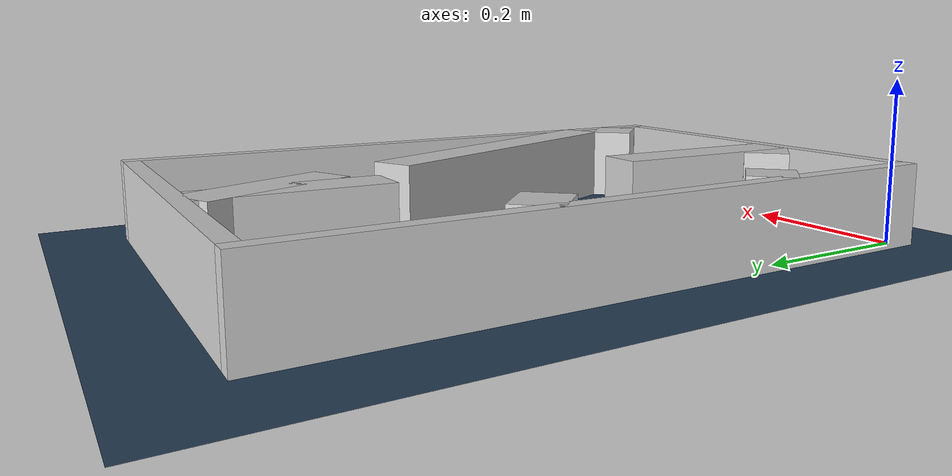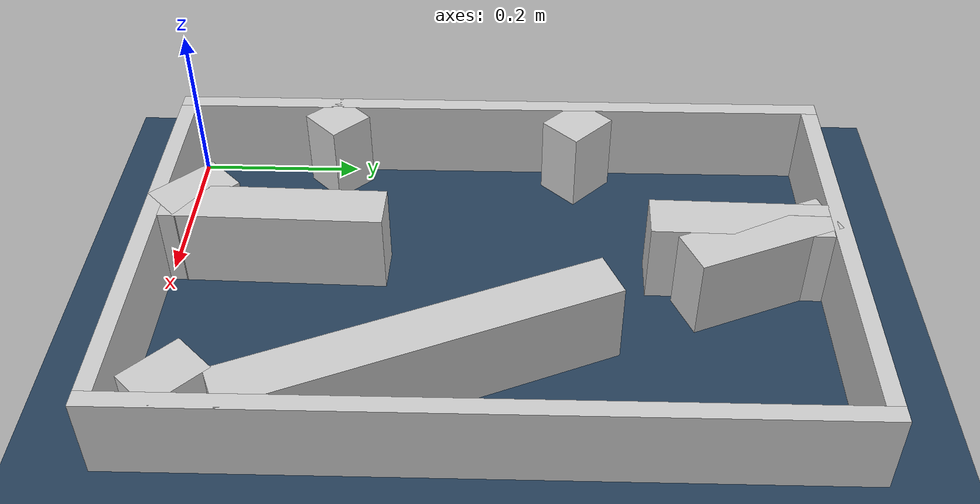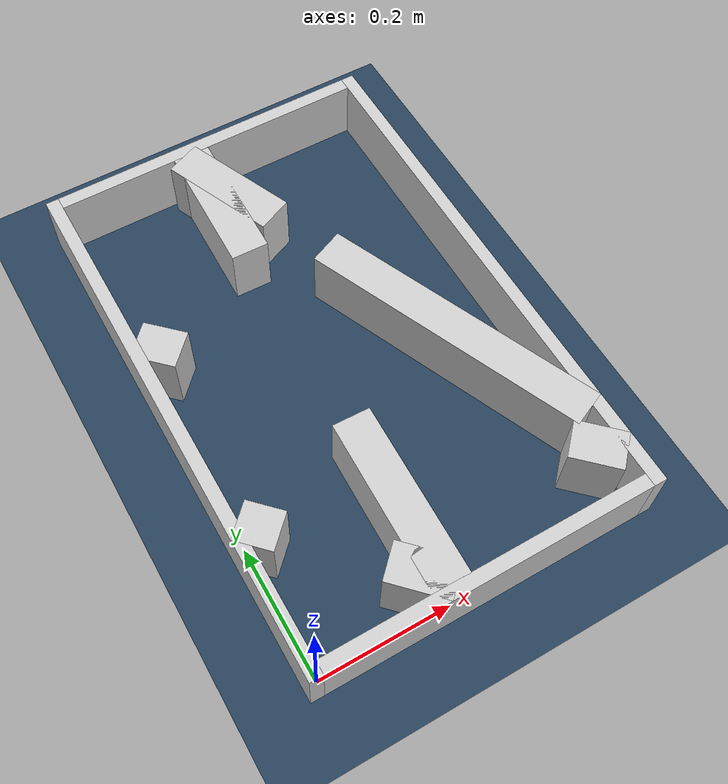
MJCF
<?xml version="1.0" ?>
<mujoco model="generated_real_template">
  <compiler angle="degree"/>
  <option timestep="0.002" integrator="implicitfast" iterations="100" cone="elliptic"/>
  <default>
    <geom density="1"/>
  </default>
  <asset>
    <texture builtin="gradient" height="3072" rgb1="0.3 0.5 0.7" rgb2="0 0 0" type="skybox" width="512"/>
    <texture builtin="checker" height="300" mark="edge" markrgb="0.8 0.8 0.8" name="groundplane" rgb1="0.2 0.3 0.4" rgb2="0.1 0.2 0.3" type="2d" width="300"/>
    <material name="groundplane" reflectance="0.2" texrepeat="5 5" texture="groundplane" texuniform="true"/>
  </asset>
  <worldbody>
    <light dir="0 0 -1" directional="true" pos="0 0 1.5"/>
    <geom name="floor" type="plane" condim="4" friction="0.5 0.005 0.001" material="groundplane" size="0 0 0.05"/>
    <body name="walls">
      <geom name="wall_boundary_left" type="box" condim="4" friction="1.0 0.005 0.0001" rgba="0.8 0.8 0.8 1" pos="-0.010000 0.387500 0.050000" euler="0 0 0.000000" size="0.010000 0.407500 0.050000"/>
      <geom name="wall_boundary_right" type="box" condim="4" friction="1.0 0.005 0.0001" rgba="0.8 0.8 0.8 1" pos="0.500000 0.387500 0.050000" euler="0 0 0.000000" size="0.010000 0.407500 0.050000"/>
      <geom name="wall_boundary_bottom" type="box" condim="4" friction="1.0 0.005 0.0001" rgba="0.8 0.8 0.8 1" pos="0.245000 -0.010000 0.050000" euler="0 0 0.000000" size="0.245000 0.010000 0.050000"/>
      <geom name="wall_boundary_top" type="box" condim="4" friction="1.0 0.005 0.0001" rgba="0.8 0.8 0.8 1" pos="0.245000 0.785000 0.050000" euler="0 0 0.000000" size="0.245000 0.010000 0.050000"/>
      <geom name="wall_inner_1_1" type="box" condim="4" friction="1.0 0.005 0.0001" rgba="0.8 0.8 0.8 1" pos="0.020527 0.184275 0.050000" euler="0 0 -45.505062" size="0.028817 0.028500 0.050000"/>
      <geom name="wall_inner_1_2" type="box" condim="4" friction="1.0 0.005 0.0001" rgba="0.8 0.8 0.8 1" pos="0.170082 0.032060 0.050000" euler="0 0 -45.505062" size="0.044946 0.028500 0.050000"/>
      <geom name="wall_inner_2_1" type="box" condim="4" friction="1.0 0.005 0.0001" rgba="0.8 0.8 0.8 1" pos="0.395607 0.316655 0.050000" euler="0 0 113.363022" size="0.222489 0.028500 0.050000"/>
      <geom name="wall_inner_2_2" type="box" condim="4" friction="1.0 0.005 0.0001" rgba="0.8 0.8 0.8 1" pos="0.233594 0.691707 0.050000" euler="0 0 113.363022" size="0.090733 0.028500 0.050000"/>
      <geom name="wall_inner_3_1" type="box" condim="4" friction="1.0 0.005 0.0001" rgba="0.8 0.8 0.8 1" pos="0.209283 0.671274 0.050000" euler="0 0 -91.449582" size="0.103759 0.028500 0.050000"/>
      <geom name="wall_inner_3_2" type="box" condim="4" friction="1.0 0.005 0.0001" rgba="0.8 0.8 0.8 1" pos="0.195591 0.130222 0.050000" euler="0 0 -91.449582" size="0.130264 0.028500 0.050000"/>
      <geom name="wall_inner_4_1" type="box" condim="4" friction="1.0 0.005 0.0001" rgba="0.8 0.8 0.8 1" pos="0.023805 0.489090 0.050000" euler="0 0 -44.113048" size="0.033156 0.028500 0.050000"/>
      <geom name="wall_inner_4_2" type="box" condim="4" friction="1.0 0.005 0.0001" rgba="0.8 0.8 0.8 1" pos="0.462838 0.063444 0.050000" euler="0 0 -44.113048" size="0.037832 0.028500 0.050000"/>
    </body>
  </worldbody>
</mujoco>
